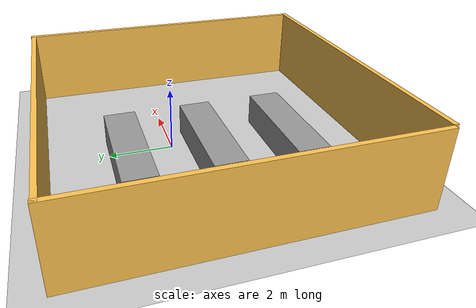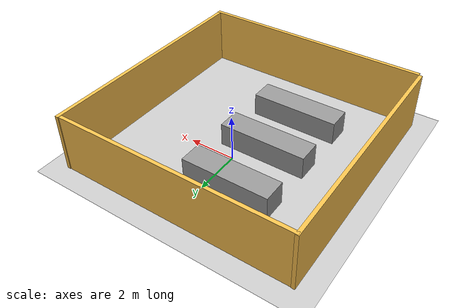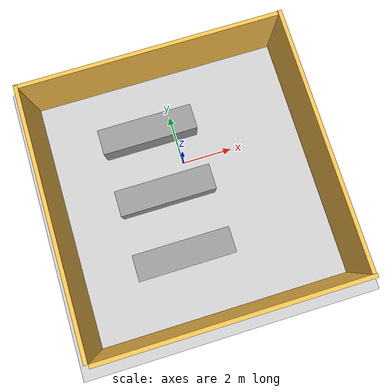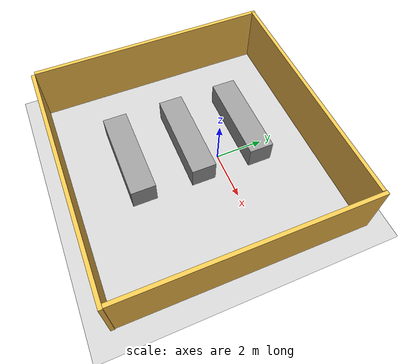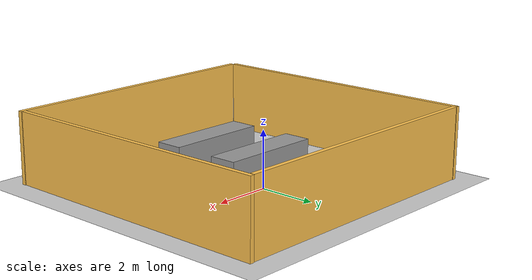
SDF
<sdf version="1.7">
 <world name="default">
  <light name="sun" type="directional">
   <pose>0 0 10 0 -0 0</pose>
   <diffuse>0.8 0.8 0.8 1</diffuse>
   <specular>0.2 0.2 0.2 1</specular>
   <attenuation>
    <range>1000</range>
    <constant>0.9</constant>
    <linear>0.01</linear>
    <quadratic>0.001</quadratic>
   </attenuation>
   <direction>-0.5 0.1 -0.9</direction>
   <spot><inner_angle>0</inner_angle><outer_angle>0</outer_angle><falloff>0</falloff></spot>
  </light>
  <model name="ground_plane">
   <static>1</static>
   <link name="link">
    <collision name="collision">
     <geometry><plane><normal>0 0 1</normal><size>100 100</size></plane></geometry>
     <surface>
      <contact><collide_bitmask>65535</collide_bitmask></contact>
      <friction><ode><mu>100</mu><mu2>50</mu2></ode></friction>
     </surface>
    </collision>
    <visual name="visual">
     <cast_shadows>0</cast_shadows>
     <geometry><plane><normal>0 0 1</normal><size>100 100</size></plane></geometry>
     <material>
      <script><uri>file://media/materials/scripts/gazebo.material</uri><name>Gazebo/Grey</name></script>
     </material>
    </visual>
   </link>
  </model>
  <gravity>0 0 -9.8</gravity>
  <magnetic_field>6e-06 2.3e-05 -4.2e-05</magnetic_field>
  <atmosphere type="adiabatic"/>
  <physics type="ode">
   <max_step_size>0.001</max_step_size>
   <real_time_factor>1</real_time_factor>
   <real_time_update_rate>1000</real_time_update_rate>
  </physics>
  <scene><ambient>0.4 0.4 0.4 1</ambient><background>0.7 0.7 0.7 1</background><shadows>1</shadows></scene>
  <spherical_coordinates>
   <surface_model>EARTH_WGS84</surface_model>
   <latitude_deg>0</latitude_deg>
   <longitude_deg>0</longitude_deg>
   <elevation>0</elevation>
   <heading_deg>0</heading_deg>
  </spherical_coordinates>
  <model name="10mWall">
   <pose>0.008223 -6.07404 0 0 -0 0</pose>
   <link name="Wall_0">
    <collision name="Wall_0_Collision">
     <geometry><box><size>10 0.15 2.5</size></box></geometry>
     <pose>0 0 1.25 0 -0 0</pose>
    </collision>
    <visual name="Wall_0_Visual">
     <pose>0 0 1.25 0 -0 0</pose>
     <geometry><box><size>10 0.15 2.5</size></box></geometry>
     <material>
      <script><uri>file://media/materials/scripts/gazebo.material</uri><name>Gazebo/Grey</name></script>
      <ambient>1 0.764706 0.305882 1</ambient>
     </material>
     <meta><layer>0</layer></meta>
    </visual>
   </link>
   <static>1</static>
  </model>
  <model name="10mWall_clone">
   <pose>-0.133257 3.90754 0 0 -0 0</pose>
   <link name="Wall_0">
    <collision name="Wall_0_Collision">
     <geometry><box><size>10 0.15 2.5</size></box></geometry>
     <pose>0 0 1.25 0 -0 0</pose>
    </collision>
    <visual name="Wall_0_Visual">
     <pose>0 0 1.25 0 -0 0</pose>
     <geometry><box><size>10 0.15 2.5</size></box></geometry>
     <material>
      <script><uri>file://media/materials/scripts/gazebo.material</uri><name>Gazebo/Grey</name></script>
      <ambient>1 0.764706 0.305882 1</ambient>
     </material>
     <meta><layer>0</layer></meta>
    </visual>
   </link>
   <static>1</static>
  </model>
  <model name="10mWall_clone_0">
   <pose>-5.08625 -1.00019 0 0 -0 1.57296</pose>
   <link name="Wall_0">
    <collision name="Wall_0_Collision">
     <geometry><box><size>10 0.15 2.5</size></box></geometry>
     <pose>0 0 1.25 0 -0 0</pose>
    </collision>
    <visual name="Wall_0_Visual">
     <pose>0 0 1.25 0 -0 0</pose>
     <geometry><box><size>10 0.15 2.5</size></box></geometry>
     <material>
      <script><uri>file://media/materials/scripts/gazebo.material</uri><name>Gazebo/Grey</name></script>
      <ambient>1 0.764706 0.305882 1</ambient>
     </material>
     <meta><layer>0</layer></meta>
    </visual>
   </link>
   <static>1</static>
  </model>
  <model name="10mWall_clone_1">
   <pose>4.93441 -0.996218 0 0 0 -1.57545</pose>
   <link name="Wall_0">
    <collision name="Wall_0_Collision">
     <geometry><box><size>10 0.15 2.5</size></box></geometry>
     <pose>0 0 1.25 0 -0 0</pose>
    </collision>
    <visual name="Wall_0_Visual">
     <pose>0 0 1.25 0 -0 0</pose>
     <geometry><box><size>10 0.15 2.5</size></box></geometry>
     <material>
      <script><uri>file://media/materials/scripts/gazebo.material</uri><name>Gazebo/Grey</name></script>
      <ambient>1 0.764706 0.305882 1</ambient>
     </material>
     <meta><layer>0</layer></meta>
    </visual>
   </link>
   <static>1</static>
  </model>
  <model name="unit_box_clone">
   <pose>-1.00015 -0.999995 0.499995 -5e-06 1e-06 0</pose>
   <link name="link">
    <inertial>
     <mass>1</mass>
     <inertia>
      <ixx>0.166667</ixx>
      <ixy>0</ixy>
      <ixz>0</ixz>
      <iyy>0.166667</iyy>
      <iyz>0</iyz>
      <izz>0.166667</izz>
     </inertia>
    </inertial>
    <collision name="collision"><geometry><box><size>3.75908 1 1</size></box></geometry></collision>
    <visual name="visual">
     <geometry><box><size>3.75908 1 1</size></box></geometry>
     <material>
      <script><name>Gazebo/Grey</name><uri>file://media/materials/scripts/gazebo.material</uri></script>
     </material>
    </visual>
   </link>
  </model>
  <model name="unit_box_clone_clone">
   <pose>-1.00012 1.49999 0.5 0 0 -1e-06</pose>
   <link name="link">
    <inertial>
     <mass>1</mass>
     <inertia>
      <ixx>0.166667</ixx>
      <ixy>0</ixy>
      <ixz>0</ixz>
      <iyy>0.166667</iyy>
      <iyz>0</iyz>
      <izz>0.166667</izz>
     </inertia>
    </inertial>
    <collision name="collision"><geometry><box><size>3.75908 1 1</size></box></geometry></collision>
    <visual name="visual">
     <geometry><box><size>3.75908 1 1</size></box></geometry>
     <material>
      <script><name>Gazebo/Grey</name><uri>file://media/materials/scripts/gazebo.material</uri></script>
     </material>
    </visual>
   </link>
  </model>
  <model name="unit_box_clone_clone_0">
   <pose>-1.00002 -3.5 0.5 0 -0 -1e-06</pose>
   <link name="link">
    <inertial>
     <mass>1</mass>
     <inertia>
      <ixx>0.166667</ixx>
      <ixy>0</ixy>
      <ixz>0</ixz>
      <iyy>0.166667</iyy>
      <iyz>0</iyz>
      <izz>0.166667</izz>
     </inertia>
    </inertial>
    <collision name="collision"><geometry><box><size>3.75908 1 1</size></box></geometry></collision>
    <visual name="visual">
     <geometry><box><size>3.75908 1 1</size></box></geometry>
     <material>
      <script><name>Gazebo/Grey</name><uri>file://media/materials/scripts/gazebo.material</uri></script>
     </material>
    </visual>
   </link>
  </model>
 </world>
</sdf>
